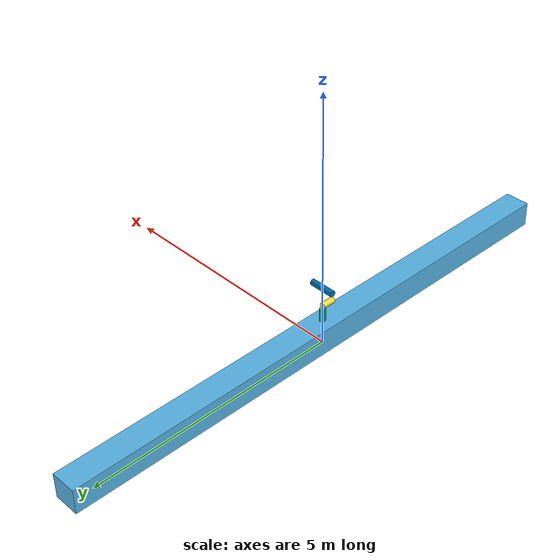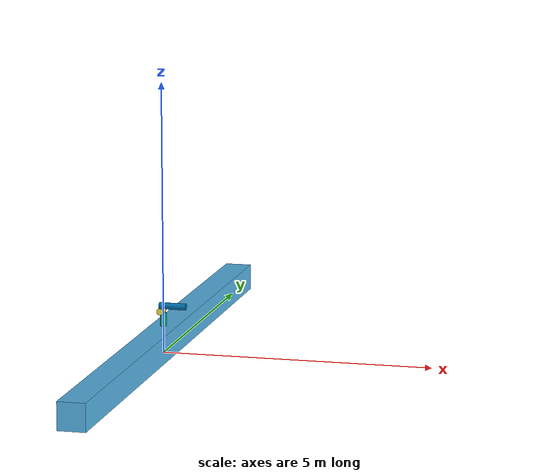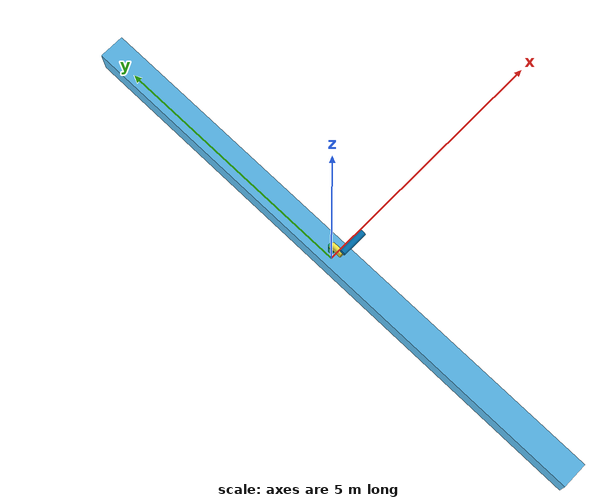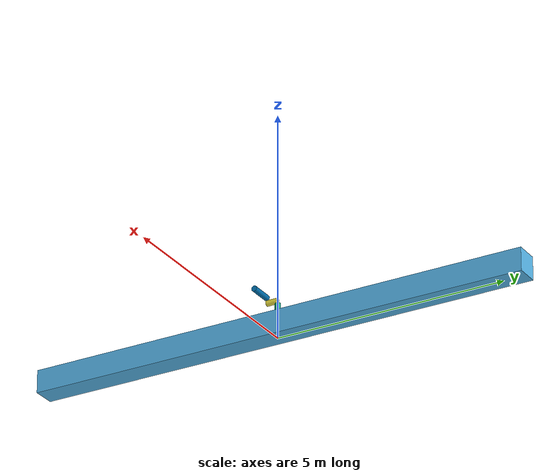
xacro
<?xml version="1.0"?>
	<robot xmlns:xacro="http://wiki.ros.org/xacro"  name="arm" >

	  <!-- common stuff -->
	 <xacro:include filename="$(find man_gazebo)/urdf/common.gazebo.xacro" />
	 <xacro:include filename="$(find man_gazebo)/urdf/6dof/transmission_6dof.xacro" />
	 <xacro:include filename="$(find man_gazebo)/urdf/gazebo.xacro" />

	<link name="world" />

	  <joint name="world_joint" type="fixed">
	    <parent link="world" />
	    <child link = "base_link" />
	    <origin xyz="0 0 0" rpy="0.0 0.0 0.0" />
	  </joint>

	  <xacro:macro name="cylinder_inertial" params="radius length mass *origin">
	    <inertial>
	      <mass value="${mass}" />
	      <xacro:insert_block name="origin" />
	      <inertia ixx="${0.0833333 * mass * (3 * radius * radius + length * length)}" ixy="0.0" ixz="0.0"
		iyy="${0.0833333 * mass * (3 * radius * radius + length * length)}" iyz="0.0"
		izz="${0.5 * mass * radius * radius}" />
	    </inertial>
	  </xacro:macro>

	<xacro:macro name="joint_limit" params="joint_type link_length ">
		<xacro:if value="${joint_type == 'revolute'}"  >
			<xacro:property name="joint_upper_limit" value="${pi}" />
			<xacro:property name="joint_lower_limit" value="${-pi}" />
		</xacro:if>
		<xacro:unless value="${joint_type == 'revolute'}"  >
			<xacro:property name="joint_upper_limit" value="${link_length}" />
			<xacro:property name="joint_lower_limit" value="${-link_length}" />
		</xacro:unless>
		<limit lower="${joint_lower_limit}" upper="${joint_upper_limit}" effort="150.0" velocity="3.15"/>
	</xacro:macro>

	<xacro:macro name="arm_robot" params="prefix ">

	<xacro:property name="joint0_type" value="prismatic" />
    	<xacro:property name="joint1_type" value="revolute" />
	<xacro:property name="joint2_type" value="revolute" />
	<xacro:property name="joint3_type" value="revolute" />
	<xacro:property name="joint4_type" value="revolute" />
	<xacro:property name="joint5_type" value="revolute" />
	<xacro:property name="joint6_type" value="revolute" />

	<xacro:property name="joint0_axe" value="0 1 0" />
	<xacro:property name="joint1_axe" value="0 0 1" />
	<xacro:property name="joint2_axe" value="0 1 0" />
	<xacro:property name="joint3_axe" value="0 1 0" />
	<xacro:property name="joint4_axe" value="0 1 0" />
	<xacro:property name="joint5_axe" value="0 1 0" />
	<xacro:property name="joint6_axe" value="0 0 1" />

	<xacro:property name="link0_length" value="0.25" />
 	<xacro:property name="base_length"  value="11" />
  	<xacro:property name="base_height"  value="0.5" />
	<xacro:property name="link1_length" value="0.25" />
	<xacro:property name="link2_length" value="0.5" />
	<xacro:property name="link3_length" value="0.4" />
	<xacro:property name="link4_length" value="0.07" />
	<xacro:property name="link5_length" value="0.1" />
	<xacro:property name="link6_length" value="0.02" />

    <!-- Inertia parameters -->
    <xacro:property name="base_mass" value="44" />
    <xacro:property name="link0_mass" value="7" />
    <xacro:property name="link1_mass" value="3.7" />
    <xacro:property name="link2_mass" value="8.393" />
    <xacro:property name="link3_mass" value="2.275" />
    <xacro:property name="link4_mass" value="1.219" />
    <xacro:property name="link5_mass" value="1.219" />
    <xacro:property name="link6_mass" value="0.1879" />

    <xacro:property name="base_radius" value="0.060" />
	<xacro:property name="link0_radius" value="0.060" />
    <xacro:property name="link1_radius" value="0.060" />
    <xacro:property name="link2_radius" value="0.060" />
    <xacro:property name="link3_radius" value="0.060" />
    <xacro:property name="link4_radius" value="0.040" />
    <xacro:property name="link5_radius" value="0.030" />
    <xacro:property name="link6_radius" value="0.025" />

	<!--   Base Link -->
    <link name="${prefix}base_link" >
      <visual>
		    <origin xyz="0 0 ${base_height/2}" rpy="0 0 0" />
        <geometry>
 			    <box size="${base_height} ${base_length} ${base_height}"/>
        </geometry>
      </visual>
      <collision>
			 <origin xyz="0 0 ${base_height/2}" rpy="0 0 0" />
        <geometry>
			    <box size="${base_length} ${base_length} ${base_height}"/>
        </geometry>
      </collision>
      <inertial>
        <mass value="${base_mass}" />
        <origin xyz="0.0 0.0 ${base_height/2}" />
        <inertia ixx="436.5" ixy="0"  ixz="0"
                          iyy="1.8" iyz="0"
                                  izz="436.5"/>
      </inertial>

    </link>

<!--  joint 0	-->
    <joint name="${prefix}joint0" type="${joint0_type}">
      <parent link="${prefix}base_link" />
      <child link = "${prefix}link0" />
      <origin xyz="0.0 0 ${base_height + link0_radius+0.01}" rpy="0 0.0 0" />
      <axis xyz="${joint0_axe}" />
	  <xacro:joint_limit joint_type="${joint0_type}" link_length="${base_length/2}"/>
      <dynamics damping="0.0" friction="0.0"/>
    </joint>

<!--  link 0 -->
    <link name="${prefix}link0">
      <visual>
		<origin xyz="0 0 ${link0_radius} " rpy="0 0 0" />
        <geometry>
			<cylinder radius="${link0_radius}" length="${link0_length}"/>
        </geometry>
      </visual>
      <collision>
		 <origin xyz="0 0 ${link0_radius}" rpy="0 0 0" />
        <geometry>
			<cylinder radius="${link0_radius}" length="${link0_length}"  mass="${link0_mass}"/>
        </geometry>
      </collision>
      <xacro:cylinder_inertial radius="${link0_radius}" length="${link0_length}" mass="${link0_mass}">
        <origin xyz="0.0 0.0 ${link0_radius}" rpy="0 0 0" />
      </xacro:cylinder_inertial>
    </link>

<!--  joint 1	-->
    <joint name="${prefix}joint1" type="${joint1_type}">
      <parent link="${prefix}link0" />
      <child link = "${prefix}link1" />
      <origin xyz="0.0 0.0 ${link0_length}" rpy="${pi/2} 0 0" />
      <axis xyz="${joint1_axe}" />
	  <xacro:joint_limit joint_type="${joint1_type}" link_length="${link1_length}"/>
      <dynamics damping="0.0" friction="0.0"/>
    </joint>
<!--  link 1  -->
    <link name="${prefix}link1">
      <visual>
		<origin xyz="0 0 ${link1_length/2} " rpy="0 0 0" />
        <geometry>
			<cylinder radius="${link1_radius}" length="${link1_length}"/>
        </geometry>
      </visual>
      <collision>
		 <origin xyz="0 0 ${link1_length/2}" rpy="0 0 0" />
        <geometry>
			<cylinder radius="${link1_radius}" length="${link1_length}"  mass="${link1_mass}"/>
        </geometry>
      </collision>
      <xacro:cylinder_inertial radius="${link1_radius}" length="${link1_length}" mass="${link1_mass}">
        <origin xyz="0.0 0.0 ${link1_length/2}" rpy="0 0 0" />
      </xacro:cylinder_inertial>
    </link>

<!--  joint 2	-->
    <joint name="${prefix}joint2" type="${joint2_type}">
      <parent link="${prefix}link1" />
      <child link = "${prefix}link2" />
      <origin xyz="0.0 ${link1_radius * 2.0} ${link1_length }" rpy="0.0 ${pi/2.0} 0.0" />
      <axis xyz="${joint2_axe}" />
	  <xacro:joint_limit joint_type="${joint2_type}" link_length="${link2_length}"/>
      <dynamics damping="0.0" friction="0.0"/>
    </joint>
<!-- link 2	-->
    <link name="${prefix}link2">
      <visual>
		<origin xyz="0 0 ${link2_length / 2}" rpy="0 0 0" />
        <geometry>
			<cylinder radius="${link2_radius}" length="${link2_length}"/>
        </geometry>
      </visual>
      <collision>
	    <origin xyz="0 0 ${link2_length / 2 }" rpy="0 0 0" />
        <geometry>
		<cylinder radius="${link2_radius}" length="${link2_length}"/>
        </geometry>
      </collision>
      <xacro:cylinder_inertial radius="${link2_radius}" length="${link2_length}" mass="${link2_mass}">
        <origin xyz="0.0 0.0 ${link2_length / 2 }" rpy="0 0 0" />
      </xacro:cylinder_inertial>
    </link>
<!--  joint 3	-->
    <joint name="${prefix}joint3" type="${joint3_type}">
      <parent link="${prefix}link2" />
      <child link = "${prefix}ee_link" />
      <origin xyz="0.0 ${link2_radius*2.0} ${link2_length}" rpy="0.0 0.0 0.0" />
      <axis xyz="${joint3_axe}" />
	  <xacro:joint_limit joint_type="${joint3_type}" link_length="${link3_length}"/>
      <dynamics damping="0.0" friction="0.0"/>
    </joint>

<!-- ee link -->
    <link name="${prefix}ee_link">
      <collision>
        <geometry>
          <box size="0.01 0.01 0.01"/>
        </geometry>
        <origin rpy="0 0 0" xyz="0 0 0.005"/>
      </collision>
	</link>

    <xacro:arm_transmission prefix="${prefix}" />
    <xacro:arm_gazebo prefix="${prefix}" />

  </xacro:macro>

   <xacro:arm_robot prefix=""/>

</robot>
